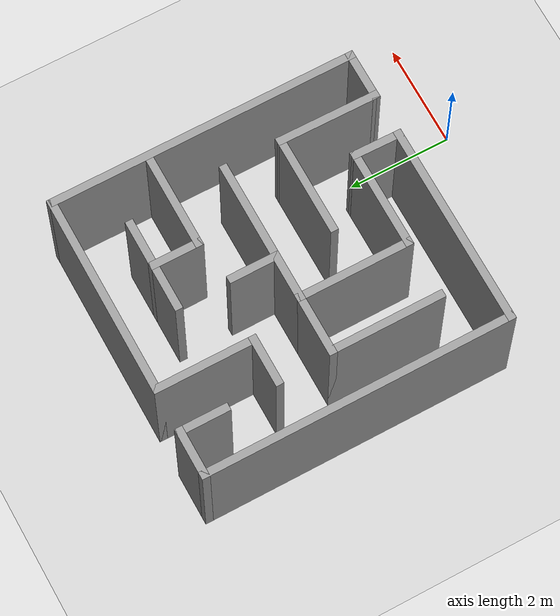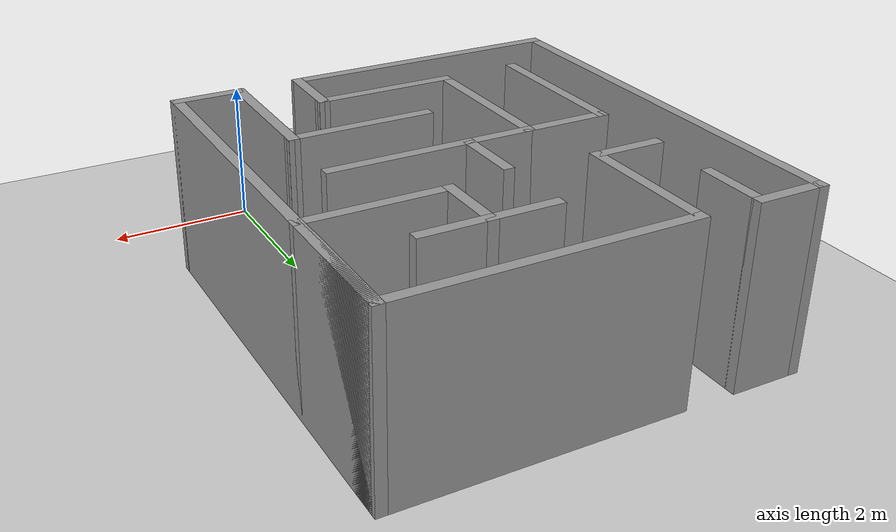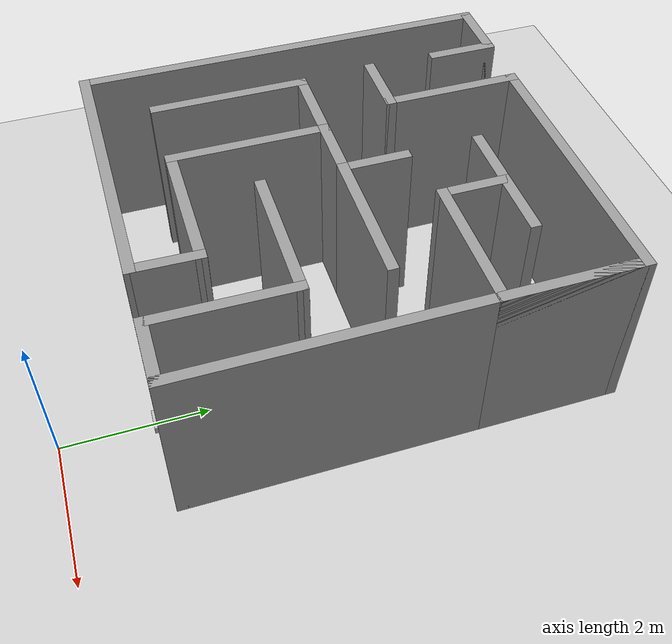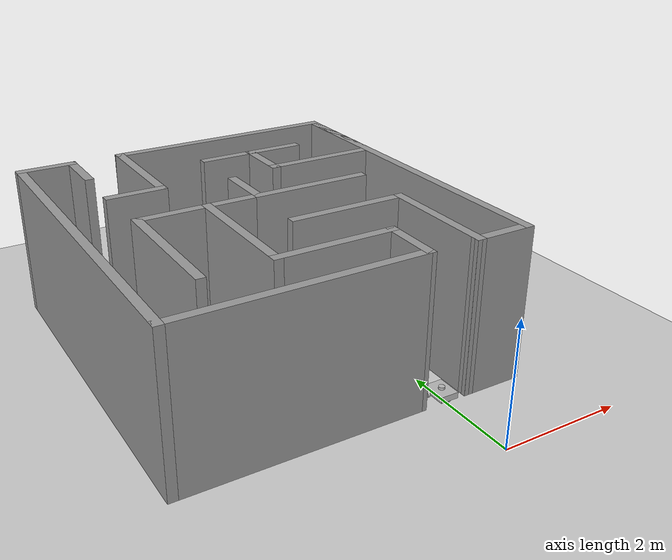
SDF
<sdf version="1.7">
 <world name="default">
  <light name="sun" type="directional">
   <pose>0 0 10 0 -0 0</pose>
   <diffuse>0.8 0.8 0.8 1</diffuse>
   <specular>0.2 0.2 0.2 1</specular>
   <attenuation>
    <range>1000</range>
    <constant>0.9</constant>
    <linear>0.01</linear>
    <quadratic>0.001</quadratic>
   </attenuation>
   <direction>-0.5 0.1 -0.9</direction>
   <spot><inner_angle>0</inner_angle><outer_angle>0</outer_angle><falloff>0</falloff></spot>
  </light>
  <model name="ground_plane">
   <static>1</static>
   <link name="link">
    <collision name="collision">
     <geometry><plane><normal>0 0 1</normal><size>100 100</size></plane></geometry>
     <surface><friction><ode><mu>100</mu><mu2>50</mu2></ode></friction></surface>
    </collision>
    <visual name="visual">
     <cast_shadows>0</cast_shadows>
     <geometry><plane><normal>0 0 1</normal><size>100 100</size></plane></geometry>
     <material>
      <script><uri>file://media/materials/scripts/gazebo.material</uri><name>Gazebo/Grey</name></script>
     </material>
    </visual>
   </link>
  </model>
  <gravity>0 0 -9.8</gravity>
  <magnetic_field>6e-06 2.3e-05 -4.2e-05</magnetic_field>
  <atmosphere type="adiabatic"/>
  <physics type="ode">
   <max_step_size>0.001</max_step_size>
   <real_time_factor>1</real_time_factor>
   <real_time_update_rate>1000</real_time_update_rate>
  </physics>
  <scene><ambient>0.4 0.4 0.4 1</ambient><background>0.7 0.7 0.7 1</background><shadows>1</shadows></scene>
  <audio><device>default</device></audio>
  <spherical_coordinates>
   <surface_model>EARTH_WGS84</surface_model>
   <latitude_deg>0</latitude_deg>
   <longitude_deg>0</longitude_deg>
   <elevation>0</elevation>
   <heading_deg>0</heading_deg>
  </spherical_coordinates>
  <model name="mazebot">
   <link name="base_link">
    <inertial>
     <pose>-0.013636 0 -0.004545 0 -0 0</pose>
     <mass>2.2</mass>
     <inertia>
      <ixx>0.0165545</ixx>
      <ixy>0</ixy>
      <ixz>-0.00136364</ixz>
      <iyy>0.0326455</iyy>
      <iyz>0</iyz>
      <izz>0.0451909</izz>
     </inertia>
    </inertial>
    <collision name="base_link_collision"><geometry><box><size>0.4 0.3 0.1</size></box></geometry></collision>
    <collision name="base_link_fixed_joint_lump__caster_wheel_collision_1">
     <pose>-0.15 0 -0.05 0 -0 0</pose>
     <geometry><sphere><radius>0.05</radius></sphere></geometry>
     <surface><friction><ode><mu>0.001</mu><mu2>0.001</mu2></ode></friction></surface>
    </collision>
    <visual name="base_link_visual"><geometry><box><size>0.4 0.3 0.1</size></box></geometry></visual>
    <visual name="base_link_fixed_joint_lump__caster_wheel_visual_1">
     <pose>-0.15 0 -0.05 0 -0 0</pose>
     <geometry><sphere><radius>0.05</radius></sphere></geometry>
    </visual>
    <visual name="base_link_fixed_joint_lump__lidar_link_visual_2">
     <pose>0 0 0.07 0 -0 0</pose>
     <geometry><cylinder><length>0.04</length><radius>0.05</radius></cylinder></geometry>
    </visual>
    <sensor name="lidar" type="ray">
     <always_on>1</always_on>
     <visualize>1</visualize>
     <update_rate>10</update_rate>
     <ray>
      <scan>
       <horizontal>
        <samples>360</samples>
        <resolution>1</resolution>
        <min_angle>-3.14</min_angle>
        <max_angle>3.14</max_angle>
       </horizontal>
       <vertical><samples>1</samples><min_angle>0</min_angle><max_angle>0</max_angle></vertical>
      </scan>
      <range><min>0.12</min><max>10</max></range>
     </ray>
     <plugin name="laser_controller" filename="libgazebo_ros_ray_sensor.so">
      <ros><argument>~/out:=scan</argument></ros>
      <output_type>sensor_msgs/LaserScan</output_type>
     </plugin>
     <pose>0 0 0.07 0 -0 0</pose>
    </sensor>
   </link>
   <joint name="left_wheel_joint" type="revolute">
    <pose relative_to="base_link">0.1 0.175 -0.05 -1.5708 0 0</pose>
    <parent>base_link</parent>
    <child>left_wheel</child>
    <axis>
     <xyz>0 0 1</xyz>
     <limit><lower>-1e+16</lower><upper>1e+16</upper></limit>
     <dynamics><spring_reference>0</spring_reference><spring_stiffness>0</spring_stiffness></dynamics>
    </axis>
   </joint>
   <link name="left_wheel">
    <pose relative_to="left_wheel_joint">0 0 0 0 -0 0</pose>
    <inertial>
     <mass>0.2</mass>
     <inertia><ixx>0.0001</ixx><ixy>0</ixy><ixz>0</ixz><iyy>0.0001</iyy><iyz>0</iyz><izz>0.0001</izz></inertia>
    </inertial>
    <collision name="left_wheel_collision">
     <geometry><cylinder><length>0.04</length><radius>0.05</radius></cylinder></geometry>
    </collision>
    <visual name="left_wheel_visual">
     <geometry><cylinder><length>0.04</length><radius>0.05</radius></cylinder></geometry>
    </visual>
   </link>
   <joint name="right_wheel_joint" type="revolute">
    <pose relative_to="base_link">0.1 -0.175 -0.05 -1.5708 0 0</pose>
    <parent>base_link</parent>
    <child>right_wheel</child>
    <axis>
     <xyz>0 0 1</xyz>
     <limit><lower>-1e+16</lower><upper>1e+16</upper></limit>
     <dynamics><spring_reference>0</spring_reference><spring_stiffness>0</spring_stiffness></dynamics>
    </axis>
   </joint>
   <link name="right_wheel">
    <pose relative_to="right_wheel_joint">0 0 0 0 -0 0</pose>
    <inertial>
     <mass>0.2</mass>
     <inertia><ixx>0.0001</ixx><ixy>0</ixy><ixz>0</ixz><iyy>0.0001</iyy><iyz>0</iyz><izz>0.0001</izz></inertia>
    </inertial>
    <collision name="right_wheel_collision">
     <geometry><cylinder><length>0.04</length><radius>0.05</radius></cylinder></geometry>
    </collision>
    <visual name="right_wheel_visual">
     <geometry><cylinder><length>0.04</length><radius>0.05</radius></cylinder></geometry>
    </visual>
   </link>
   <static>0</static>
   <plugin name="diff_drive" filename="libgazebo_ros_diff_drive.so">
    <left_joint>left_wheel_joint</left_joint>
    <right_joint>right_wheel_joint</right_joint>
    <wheel_separation>0.35</wheel_separation>
    <wheel_diameter>0.1</wheel_diameter>
    <max_wheel_torque>10</max_wheel_torque>
    <max_wheel_acceleration>1.0</max_wheel_acceleration>
    <command_topic>cmd_vel</command_topic>
    <publish_odom>1</publish_odom>
    <publish_odom_tf>1</publish_odom_tf>
    <publish_wheel_tf>1</publish_wheel_tf>
    <odometry_topic>odom</odometry_topic>
    <odometry_frame>odom</odometry_frame>
    <robot_base_frame>base_link</robot_base_frame>
   </plugin>
   <pose>0.036378 1.4429 0.100001 -6e-06 -5e-06 1.56123</pose>
  </model>
  <model name="yey">
   <pose>-1.48465 2.79239 0 0 0 -1.5708</pose>
   <link name="Wall_10">
    <collision name="Wall_10_Collision">
     <geometry><box><size>2 0.15 2.5</size></box></geometry>
     <pose>0 0 1.25 0 -0 0</pose>
    </collision>
    <visual name="Wall_10_Visual">
     <pose>0 0 1.25 0 -0 0</pose>
     <geometry><box><size>2 0.15 2.5</size></box></geometry>
     <material>
      <script><uri>file://media/materials/scripts/gazebo.material</uri><name>Gazebo/Grey</name></script>
      <ambient>1 1 1 1</ambient>
     </material>
     <meta><layer>0</layer></meta>
    </visual>
    <pose>-0.418237 1 0 0 -0 -1.5708</pose>
   </link>
   <link name="Wall_19">
    <collision name="Wall_19_Collision">
     <geometry><box><size>6 0.15 2.5</size></box></geometry>
     <pose>0 0 1.25 0 -0 0</pose>
    </collision>
    <visual name="Wall_19_Visual">
     <pose>0 0 1.25 0 -0 0</pose>
     <geometry><box><size>6 0.15 2.5</size></box></geometry>
     <material>
      <script><uri>file://media/materials/scripts/gazebo.material</uri><name>Gazebo/Grey</name></script>
      <ambient>1 1 1 1</ambient>
     </material>
     <meta><layer>0</layer></meta>
    </visual>
    <pose>-1.49324 -2.775 0 0 -0 3.14159</pose>
   </link>
   <link name="Wall_20">
    <collision name="Wall_20_Collision">
     <geometry><box><size>1 0.15 2.5</size></box></geometry>
     <pose>0 0 1.25 0 -0 0</pose>
    </collision>
    <visual name="Wall_20_Visual">
     <pose>0 0 1.25 0 -0 0</pose>
     <geometry><box><size>1 0.15 2.5</size></box></geometry>
     <material>
      <script><uri>file://media/materials/scripts/gazebo.material</uri><name>Gazebo/Grey</name></script>
      <ambient>1 1 1 1</ambient>
     </material>
     <meta><layer>0</layer></meta>
    </visual>
    <pose>-4.41824 -2.35 0 0 -0 1.5708</pose>
   </link>
   <link name="Wall_21">
    <collision name="Wall_21_Collision">
     <geometry><box><size>1 0.15 2.5</size></box></geometry>
     <pose>0 0 1.25 0 -0 0</pose>
    </collision>
    <visual name="Wall_21_Visual">
     <pose>0 0 1.25 0 -0 0</pose>
     <geometry><box><size>1 0.15 2.5</size></box></geometry>
     <material>
      <script><uri>file://media/materials/scripts/gazebo.material</uri><name>Gazebo/Grey</name></script>
      <ambient>1 1 1 1</ambient>
     </material>
     <meta><layer>0</layer></meta>
    </visual>
    <pose>-3.99324 -1.925 0 0 -0 0</pose>
   </link>
   <link name="Wall_3">
    <collision name="Wall_3_Collision">
     <geometry><box><size>4 0.15 2.5</size></box></geometry>
     <pose>0 0 1.25 0 -0 0</pose>
    </collision>
    <visual name="Wall_3_Visual">
     <pose>0 0 1.25 0 -0 0</pose>
     <geometry><box><size>4 0.15 2.5</size></box></geometry>
     <material>
      <script><uri>file://media/materials/scripts/gazebo.material</uri><name>Gazebo/Grey</name></script>
      <ambient>1 1 1 1</ambient>
     </material>
     <meta><layer>0</layer></meta>
    </visual>
    <pose>-4.41824 0.85 0 0 -0 -1.5708</pose>
   </link>
   <link name="Wall_32">
    <collision name="Wall_32_Collision">
     <geometry><box><size>2 0.15 2.5</size></box></geometry>
     <pose>0 0 1.25 0 -0 0</pose>
    </collision>
    <visual name="Wall_32_Visual">
     <pose>0 0 1.25 0 -0 0</pose>
     <geometry><box><size>2 0.15 2.5</size></box></geometry>
     <material>
      <script><uri>file://media/materials/scripts/gazebo.material</uri><name>Gazebo/Grey</name></script>
      <ambient>1 1 1 1</ambient>
     </material>
     <meta><layer>0</layer></meta>
    </visual>
    <pose>-3.49324 2.775 0 0 -0 0</pose>
   </link>
   <link name="Wall_33">
    <collision name="Wall_33_Collision">
     <geometry><box><size>2 0.15 2.5</size></box></geometry>
     <pose>0 0 1.25 0 -0 0</pose>
    </collision>
    <visual name="Wall_33_Visual">
     <pose>0 0 1.25 0 -0 0</pose>
     <geometry><box><size>2 0.15 2.5</size></box></geometry>
     <material>
      <script><uri>file://media/materials/scripts/gazebo.material</uri><name>Gazebo/Grey</name></script>
      <ambient>1 1 1 1</ambient>
     </material>
     <meta><layer>0</layer></meta>
    </visual>
    <pose>-2.56824 1.85 0 0 -0 -1.5708</pose>
   </link>
   <link name="Wall_34">
    <collision name="Wall_34_Collision">
     <geometry><box><size>1 0.15 2.5</size></box></geometry>
     <pose>0 0 1.25 0 -0 0</pose>
    </collision>
    <visual name="Wall_34_Visual">
     <pose>0 0 1.25 0 -0 0</pose>
     <geometry><box><size>1 0.15 2.5</size></box></geometry>
     <material>
      <script><uri>file://media/materials/scripts/gazebo.material</uri><name>Gazebo/Grey</name></script>
      <ambient>1 1 1 1</ambient>
     </material>
     <meta><layer>0</layer></meta>
    </visual>
    <pose>-2.99324 0.925 0 0 -0 3.14159</pose>
   </link>
   <link name="Wall_35">
    <collision name="Wall_35_Collision">
     <geometry><box><size>1 0.15 2.5</size></box></geometry>
     <pose>0 0 1.25 0 -0 0</pose>
    </collision>
    <visual name="Wall_35_Visual">
     <pose>0 0 1.25 0 -0 0</pose>
     <geometry><box><size>1 0.15 2.5</size></box></geometry>
     <material>
      <script><uri>file://media/materials/scripts/gazebo.material</uri><name>Gazebo/Grey</name></script>
      <ambient>1 1 1 1</ambient>
     </material>
     <meta><layer>0</layer></meta>
    </visual>
    <pose>-3.41824 1.35 0 0 -0 1.5708</pose>
   </link>
   <link name="Wall_37">
    <collision name="Wall_37_Collision">
     <geometry><box><size>1 0.15 2.5</size></box></geometry>
     <pose>0 0 1.25 0 -0 0</pose>
    </collision>
    <visual name="Wall_37_Visual">
     <pose>0 0 1.25 0 -0 0</pose>
     <geometry><box><size>1 0.15 2.5</size></box></geometry>
     <material>
      <script><uri>file://media/materials/scripts/gazebo.material</uri><name>Gazebo/Grey</name></script>
      <ambient>1 1 1 1</ambient>
     </material>
     <meta><layer>0</layer></meta>
    </visual>
    <pose>-3.41824 0.5 0 0 -0 -1.5708</pose>
   </link>
   <link name="Wall_4">
    <collision name="Wall_4_Collision">
     <geometry><box><size>2 0.15 2.5</size></box></geometry>
     <pose>0 0 1.25 0 -0 0</pose>
    </collision>
    <visual name="Wall_4_Visual">
     <pose>0 0 1.25 0 -0 0</pose>
     <geometry><box><size>2 0.15 2.5</size></box></geometry>
     <material>
      <script><uri>file://media/materials/scripts/gazebo.material</uri><name>Gazebo/Grey</name></script>
      <ambient>1 1 1 1</ambient>
     </material>
     <meta><layer>0</layer></meta>
    </visual>
    <pose>-3.49324 -1.075 0 0 -0 0</pose>
   </link>
   <link name="Wall_41">
    <collision name="Wall_41_Collision">
     <geometry><box><size>1.00018 0.15 2.5</size></box></geometry>
     <pose>0 0 1.25 0 -0 0</pose>
    </collision>
    <visual name="Wall_41_Visual">
     <pose>0 0 1.25 0 -0 0</pose>
     <geometry><box><size>1.00018 0.15 2.5</size></box></geometry>
     <material>
      <script><uri>file://media/materials/scripts/gazebo.material</uri><name>Gazebo/Grey</name></script>
      <ambient>1 1 1 1</ambient>
     </material>
     <meta><layer>0</layer></meta>
    </visual>
    <pose>1.00676 1.06618 0 0 -0 3.12084</pose>
   </link>
   <link name="Wall_42">
    <collision name="Wall_42_Collision">
     <geometry><box><size>2 0.15 2.5</size></box></geometry>
     <pose>0 0 1.25 0 -0 0</pose>
    </collision>
    <visual name="Wall_42_Visual">
     <pose>0 0 1.25 0 -0 0</pose>
     <geometry><box><size>2 0.15 2.5</size></box></geometry>
     <material>
      <script><uri>file://media/materials/scripts/gazebo.material</uri><name>Gazebo/Grey</name></script>
      <ambient>1 1 1 1</ambient>
     </material>
     <meta><layer>0</layer></meta>
    </visual>
    <pose>0.581763 0.15 0 0 -0 -1.5708</pose>
   </link>
   <link name="Wall_47">
    <collision name="Wall_47_Collision">
     <geometry><box><size>2.25 0.15 2.5</size></box></geometry>
     <pose>0 0 1.25 0 -0 0</pose>
    </collision>
    <visual name="Wall_47_Visual">
     <pose>0 0 1.25 0 -0 0</pose>
     <geometry><box><size>2.25 0.15 2.5</size></box></geometry>
     <material>
      <script><uri>file://media/materials/scripts/gazebo.material</uri><name>Gazebo/Grey</name></script>
      <ambient>1 1 1 1</ambient>
     </material>
     <meta><layer>0</layer></meta>
    </visual>
    <pose>-0.468236 -0.775 0 0 -0 3.14159</pose>
   </link>
   <link name="Wall_48">
    <collision name="Wall_48_Collision">
     <geometry><box><size>1 0.15 2.5</size></box></geometry>
     <pose>0 0 1.25 0 -0 0</pose>
    </collision>
    <visual name="Wall_48_Visual">
     <pose>0 0 1.25 0 -0 0</pose>
     <geometry><box><size>1 0.15 2.5</size></box></geometry>
     <material>
      <script><uri>file://media/materials/scripts/gazebo.material</uri><name>Gazebo/Grey</name></script>
      <ambient>1 1 1 1</ambient>
     </material>
     <meta><layer>0</layer></meta>
    </visual>
    <pose>-1.51824 -0.35 0 0 -0 1.5708</pose>
   </link>
   <link name="Wall_49">
    <collision name="Wall_49_Collision">
     <geometry><box><size>1 0.15 2.5</size></box></geometry>
     <pose>0 0 1.25 0 -0 0</pose>
    </collision>
    <visual name="Wall_49_Visual">
     <pose>0 0 1.25 0 -0 0</pose>
     <geometry><box><size>1 0.15 2.5</size></box></geometry>
     <material>
      <script><uri>file://media/materials/scripts/gazebo.material</uri><name>Gazebo/Grey</name></script>
      <ambient>1 1 1 1</ambient>
     </material>
     <meta><layer>0</layer></meta>
    </visual>
    <pose>-1.94324 0.075 0 0 -0 3.14159</pose>
   </link>
   <link name="Wall_5">
    <collision name="Wall_5_Collision">
     <geometry><box><size>1 0.15 2.5</size></box></geometry>
     <pose>0 0 1.25 0 -0 0</pose>
    </collision>
    <visual name="Wall_5_Visual">
     <pose>0 0 1.25 0 -0 0</pose>
     <geometry><box><size>1 0.15 2.5</size></box></geometry>
     <material>
      <script><uri>file://media/materials/scripts/gazebo.material</uri><name>Gazebo/Grey</name></script>
      <ambient>1 1 1 1</ambient>
     </material>
     <meta><layer>0</layer></meta>
    </visual>
    <pose>-2.56824 -1.5 0 0 -0 -1.5708</pose>
   </link>
   <link name="Wall_51">
    <collision name="Wall_51_Collision">
     <geometry><box><size>2 0.15 2.5</size></box></geometry>
     <pose>0 0 1.25 0 -0 0</pose>
    </collision>
    <visual name="Wall_51_Visual">
     <pose>0 0 1.25 0 -0 0</pose>
     <geometry><box><size>2 0.15 2.5</size></box></geometry>
     <material>
      <script><uri>file://media/materials/scripts/gazebo.material</uri><name>Gazebo/Grey</name></script>
      <ambient>1 1 1 1</ambient>
     </material>
     <meta><layer>0</layer></meta>
    </visual>
    <pose>-1.51824 1 0 0 -0 1.5708</pose>
   </link>
   <link name="Wall_53">
    <collision name="Wall_53_Collision">
     <geometry><box><size>1.25 0.15 2.5</size></box></geometry>
     <pose>0 0 1.25 0 -0 0</pose>
    </collision>
    <visual name="Wall_53_Visual">
     <pose>0 0 1.25 0 -0 0</pose>
     <geometry><box><size>1.25 0.15 2.5</size></box></geometry>
     <material>
      <script><uri>file://media/materials/scripts/gazebo.material</uri><name>Gazebo/Grey</name></script>
      <ambient>1 1 1 1</ambient>
     </material>
     <meta><layer>0</layer></meta>
    </visual>
    <pose>-1.51824 -1.325 0 0 -0 -1.5708</pose>
   </link>
   <link name="Wall_54">
    <collision name="Wall_54_Collision">
     <geometry><box><size>2.25 0.15 2.5</size></box></geometry>
     <pose>0 0 1.25 0 -0 0</pose>
    </collision>
    <visual name="Wall_54_Visual">
     <pose>0 0 1.25 0 -0 0</pose>
     <geometry><box><size>2.25 0.15 2.5</size></box></geometry>
     <material>
      <script><uri>file://media/materials/scripts/gazebo.material</uri><name>Gazebo/Grey</name></script>
      <ambient>1 1 1 1</ambient>
     </material>
     <meta><layer>0</layer></meta>
    </visual>
    <pose>-0.468236 -1.875 0 0 -0 0</pose>
   </link>
   <link name="Wall_57">
    <collision name="Wall_57_Collision">
     <geometry><box><size>3.98236 0.15 2.5</size></box></geometry>
     <pose>0 0 1.25 0 -0 0</pose>
    </collision>
    <visual name="Wall_57_Visual">
     <pose>0 0 1.25 0 -0 0</pose>
     <geometry><box><size>3.98236 0.15 2.5</size></box></geometry>
     <material>
      <script><uri>file://media/materials/scripts/gazebo.material</uri><name>Gazebo/Grey</name></script>
      <ambient>1 1 1 1</ambient>
     </material>
     <meta><layer>0</layer></meta>
    </visual>
    <pose>1.43176 -0.858822 0 0 -0 -1.5708</pose>
   </link>
   <link name="Wall_7">
    <collision name="Wall_7_Collision">
     <geometry><box><size>6 0.15 2.5</size></box></geometry>
     <pose>0 0 1.25 0 -0 0</pose>
    </collision>
    <visual name="Wall_7_Visual">
     <pose>0 0 1.25 0 -0 0</pose>
     <geometry><box><size>6 0.15 2.5</size></box></geometry>
     <material>
      <script><uri>file://media/materials/scripts/gazebo.material</uri><name>Gazebo/Grey</name></script>
      <ambient>1 1 1 1</ambient>
     </material>
     <meta><layer>0</layer></meta>
    </visual>
    <pose>-1.49324 2.775 0 0 -0 0</pose>
   </link>
   <link name="Wall_8">
    <collision name="Wall_8_Collision">
     <geometry><box><size>1.01764 0.15 2.5</size></box></geometry>
     <pose>0 0 1.25 0 -0 0</pose>
    </collision>
    <visual name="Wall_8_Visual">
     <pose>0 0 1.25 0 -0 0</pose>
     <geometry><box><size>1.01764 0.15 2.5</size></box></geometry>
     <material>
      <script><uri>file://media/materials/scripts/gazebo.material</uri><name>Gazebo/Grey</name></script>
      <ambient>1 1 1 1</ambient>
     </material>
     <meta><layer>0</layer></meta>
    </visual>
    <pose>1.43176 2.34118 0 0 -0 -1.5708</pose>
   </link>
   <link name="Wall_9">
    <collision name="Wall_9_Collision">
     <geometry><box><size>2.00008 0.15 2.5</size></box></geometry>
     <pose>0 0 1.25 0 -0 0</pose>
    </collision>
    <visual name="Wall_9_Visual">
     <pose>0 0 1.25 0 -0 0</pose>
     <geometry><box><size>2.00008 0.15 2.5</size></box></geometry>
     <material>
      <script><uri>file://media/materials/scripts/gazebo.material</uri><name>Gazebo/Grey</name></script>
      <ambient>1 1 1 1</ambient>
     </material>
     <meta><layer>0</layer></meta>
    </visual>
    <pose>0.506763 1.91618 0 0 -0 3.13206</pose>
   </link>
   <static>1</static>
  </model>
 </world>
</sdf>
